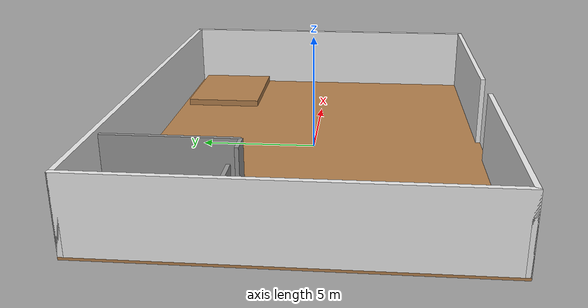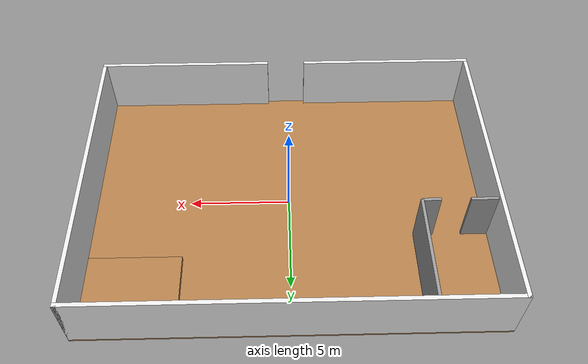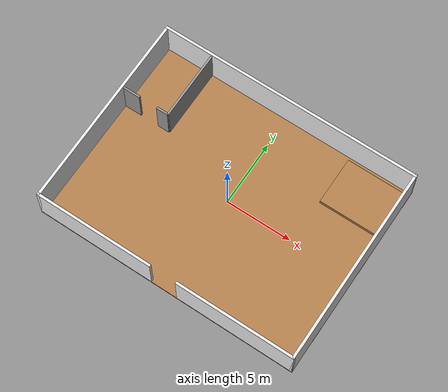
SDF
<?xml version="1.0"?>

<sdf version="1.6">

  <world name="restaurant_party_hall">

    <!-- Standard Earth gravity. -->
    <gravity>0 0 -9.81</gravity>

    <!-- Gazebo Classic physics configuration. -->
    <physics name="restaurant_physics" type="ode">
      <max_step_size>0.001</max_step_size>
      <real_time_update_rate>1000</real_time_update_rate>
    </physics>

    <!-- General visual settings. -->
    <scene>
      <ambient>0.45 0.45 0.45 1</ambient>
      <background>0.75 0.80 0.85 1</background>
      <shadows>true</shadows>
    </scene>

    <!-- Main directional light. -->
    <light name="sun" type="directional">
      <cast_shadows>true</cast_shadows>

      <pose>0 0 12 0 0 0</pose>

      <diffuse>0.8 0.8 0.8 1</diffuse>
      <specular>0.2 0.2 0.2 1</specular>

      <direction>-0.4 0.2 -1.0</direction>
    </light>

    <!-- Ceiling light positioned above the left side of the hall. -->
    <light name="ceiling_light_left" type="point">
      <pose>-5 0 4.5 0 0 0</pose>

      <diffuse>0.85 0.85 0.80 1</diffuse>
      <specular>0.15 0.15 0.15 1</specular>

      <attenuation>
        <range>16</range>
        <constant>0.7</constant>
        <linear>0.02</linear>
        <quadratic>0.002</quadratic>
      </attenuation>

      <cast_shadows>false</cast_shadows>
    </light>

    <!-- Ceiling light positioned above the centre of the hall. -->
    <light name="ceiling_light_centre" type="point">
      <pose>0 0 4.5 0 0 0</pose>

      <diffuse>0.90 0.90 0.85 1</diffuse>
      <specular>0.15 0.15 0.15 1</specular>

      <attenuation>
        <range>16</range>
        <constant>0.7</constant>
        <linear>0.02</linear>
        <quadratic>0.002</quadratic>
      </attenuation>

      <cast_shadows>false</cast_shadows>
    </light>

    <!-- Ceiling light positioned above the right side of the hall. -->
    <light name="ceiling_light_right" type="point">
      <pose>5 0 4.5 0 0 0</pose>

      <diffuse>0.85 0.85 0.80 1</diffuse>
      <specular>0.15 0.15 0.15 1</specular>

      <attenuation>
        <range>16</range>
        <constant>0.7</constant>
        <linear>0.02</linear>
        <quadratic>0.002</quadratic>
      </attenuation>

      <cast_shadows>false</cast_shadows>
    </light>

    <!--
      RESTAURANT FLOOR

      Dimensions:
      X = 20 metres
      Y = 15 metres
      Z = 0.10 metres
    -->
    <model name="restaurant_floor">
      <static>true</static>

      <pose>0 0 -0.05 0 0 0</pose>

      <link name="floor_link">

        <collision name="floor_collision">
          <geometry>
            <box>
              <size>20 15 0.10</size>
            </box>
          </geometry>
        </collision>

        <visual name="floor_visual">
          <geometry>
            <box>
              <size>20 15 0.10</size>
            </box>
          </geometry>

          <material>
            <script>
              <uri>file://media/materials/scripts/gazebo.material</uri>
              <name>Gazebo/Wood</name>
            </script>
          </material>
        </visual>

      </link>
    </model>

    <!-- North exterior wall. -->
    <model name="north_wall">
      <static>true</static>

      <pose>0 7.40 1.50 0 0 0</pose>

      <link name="wall_link">

        <collision name="wall_collision">
          <geometry>
            <box>
              <size>20 0.20 3.00</size>
            </box>
          </geometry>
        </collision>

        <visual name="wall_visual">
          <geometry>
            <box>
              <size>20 0.20 3.00</size>
            </box>
          </geometry>

          <material>
            <script>
              <uri>file://media/materials/scripts/gazebo.material</uri>
              <name>Gazebo/White</name>
            </script>
          </material>
        </visual>

      </link>
    </model>

    <!-- East exterior wall. -->
    <model name="east_wall">
      <static>true</static>

      <pose>9.90 0 1.50 0 0 0</pose>

      <link name="wall_link">

        <collision name="wall_collision">
          <geometry>
            <box>
              <size>0.20 15 3.00</size>
            </box>
          </geometry>
        </collision>

        <visual name="wall_visual">
          <geometry>
            <box>
              <size>0.20 15 3.00</size>
            </box>
          </geometry>

          <material>
            <script>
              <uri>file://media/materials/scripts/gazebo.material</uri>
              <name>Gazebo/White</name>
            </script>
          </material>
        </visual>

      </link>
    </model>

    <!-- West exterior wall. -->
    <model name="west_wall">
      <static>true</static>

      <pose>-9.90 0 1.50 0 0 0</pose>

      <link name="wall_link">

        <collision name="wall_collision">
          <geometry>
            <box>
              <size>0.20 15 3.00</size>
            </box>
          </geometry>
        </collision>

        <visual name="wall_visual">
          <geometry>
            <box>
              <size>0.20 15 3.00</size>
            </box>
          </geometry>

          <material>
            <script>
              <uri>file://media/materials/scripts/gazebo.material</uri>
              <name>Gazebo/White</name>
            </script>
          </material>
        </visual>

      </link>
    </model>

    <!--
      South wall, left section.

      The gap between the left and right sections forms the main entrance.
    -->
    <model name="south_wall_left">
      <static>true</static>

      <pose>-5.50 -7.40 1.50 0 0 0</pose>

      <link name="wall_link">

        <collision name="wall_collision">
          <geometry>
            <box>
              <size>9.00 0.20 3.00</size>
            </box>
          </geometry>
        </collision>

        <visual name="wall_visual">
          <geometry>
            <box>
              <size>9.00 0.20 3.00</size>
            </box>
          </geometry>

          <material>
            <script>
              <uri>file://media/materials/scripts/gazebo.material</uri>
              <name>Gazebo/White</name>
            </script>
          </material>
        </visual>

      </link>
    </model>

    <!-- South wall, right section. -->
    <model name="south_wall_right">
      <static>true</static>

      <pose>5.50 -7.40 1.50 0 0 0</pose>

      <link name="wall_link">

        <collision name="wall_collision">
          <geometry>
            <box>
              <size>9.00 0.20 3.00</size>
            </box>
          </geometry>
        </collision>

        <visual name="wall_visual">
          <geometry>
            <box>
              <size>9.00 0.20 3.00</size>
            </box>
          </geometry>

          <material>
            <script>
              <uri>file://media/materials/scripts/gazebo.material</uri>
              <name>Gazebo/White</name>
            </script>
          </material>
        </visual>

      </link>
    </model>

    <!-- Kitchen east-side partition. -->
    <model name="kitchen_east_partition">
      <static>true</static>

      <pose>-6.20 4.75 1.40 0 0 0</pose>

      <link name="partition_link">

        <collision name="partition_collision">
          <geometry>
            <box>
              <size>0.15 5.30 2.80</size>
            </box>
          </geometry>
        </collision>

        <visual name="partition_visual">
          <geometry>
            <box>
              <size>0.15 5.30 2.80</size>
            </box>
          </geometry>

          <material>
            <script>
              <uri>file://media/materials/scripts/gazebo.material</uri>
              <name>Gazebo/Grey</name>
            </script>
          </material>
        </visual>

      </link>
    </model>

    <!-- Kitchen lower partition, left of its doorway. -->
    <model name="kitchen_south_partition_left">
      <static>true</static>

      <pose>-9.20 2.10 1.40 0 0 0</pose>

      <link name="partition_link">

        <collision name="partition_collision">
          <geometry>
            <box>
              <size>1.40 0.15 2.80</size>
            </box>
          </geometry>
        </collision>

        <visual name="partition_visual">
          <geometry>
            <box>
              <size>1.40 0.15 2.80</size>
            </box>
          </geometry>

          <material>
            <script>
              <uri>file://media/materials/scripts/gazebo.material</uri>
              <name>Gazebo/Grey</name>
            </script>
          </material>
        </visual>

      </link>
    </model>

    <!-- Kitchen lower partition, right of its doorway. -->
    <model name="kitchen_south_partition_right">
      <static>true</static>

      <pose>-6.65 2.10 1.40 0 0 0</pose>

      <link name="partition_link">

        <collision name="partition_collision">
          <geometry>
            <box>
              <size>0.90 0.15 2.80</size>
            </box>
          </geometry>
        </collision>

        <visual name="partition_visual">
          <geometry>
            <box>
              <size>0.90 0.15 2.80</size>
            </box>
          </geometry>

          <material>
            <script>
              <uri>file://media/materials/scripts/gazebo.material</uri>
              <name>Gazebo/Grey</name>
            </script>
          </material>
        </visual>

      </link>
    </model>

    <!-- Raised stage positioned at the upper-right side of the hall. -->
    <model name="restaurant_stage">
      <static>true</static>

      <pose>7.45 5.20 0.15 0 0 0</pose>

      <link name="stage_link">

        <collision name="stage_collision">
          <geometry>
            <box>
              <size>4.50 3.60 0.30</size>
            </box>
          </geometry>
        </collision>

        <visual name="stage_visual">
          <geometry>
            <box>
              <size>4.50 3.60 0.30</size>
            </box>
          </geometry>

          <material>
            <script>
              <uri>file://media/materials/scripts/gazebo.material</uri>
              <name>Gazebo/Wood</name>
            </script>
          </material>
        </visual>

      </link>
    </model>

    <!-- Initial Gazebo GUI camera position. -->
    <gui fullscreen="0">
      <camera name="restaurant_overview_camera">
        <pose>0 -21 17 0 0.62 1.57</pose>
        <view_controller>orbit</view_controller>
      </camera>
    </gui>

  </world>

</sdf>
